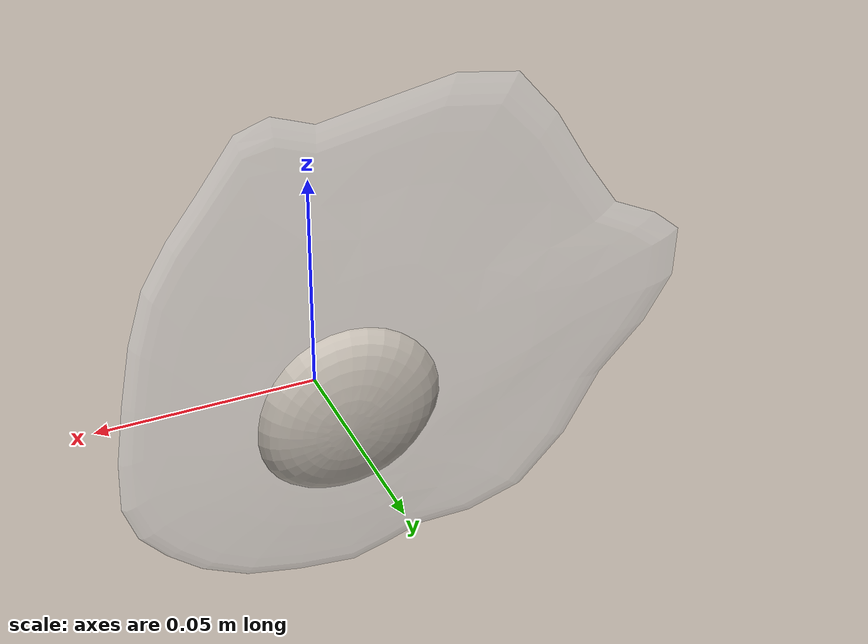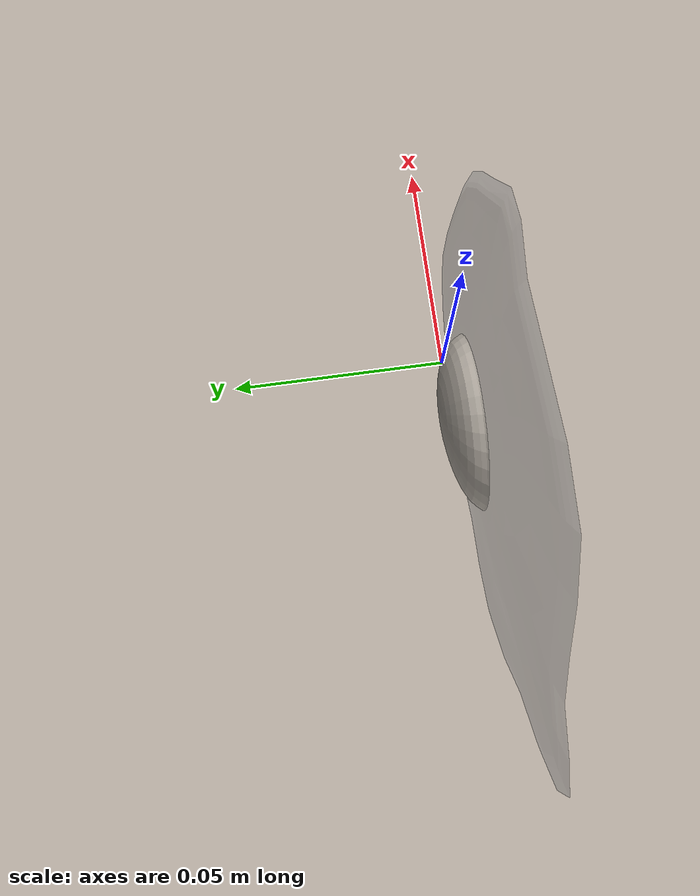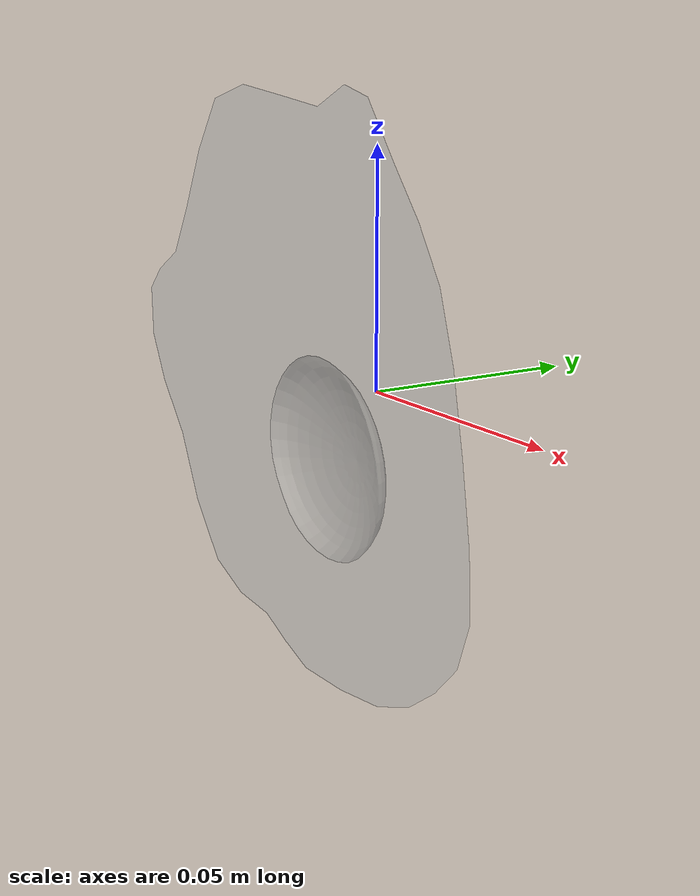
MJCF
<mujoco model="Egg_Cracked_23">
  <compiler autolimits="true" boundmass="0.01" angle="radian"/>
  <default>
    <default class="/">
      <default class="__VISUAL_MJT__">
        <geom contype="0" conaffinity="0" group="0"/>
      </default>
      <default class="__STRUCTURAL_MJT__">
        <geom contype="8" conaffinity="15" group="4" friction="0.90000000000000002 0.90000000000000002 0.001" solref="0.025000000000000001 1" solimp="0.998 0.998 0.001"/>
      </default>
      <default class="__DYNAMIC_MJT__">
        <geom contype="1" conaffinity="15" group="4" friction="0.90000000000000002 0.90000000000000002 0.001" solref="0.025000000000000001 1" solimp="0.998 0.998 0.001"/>
      </default>
    </default>
  </default>
  <asset>
    <texture name="Fried_Egg_White_Uncooked_Mat" type="2d" file="Fried_Egg_AlbedoTransparency.png"/>
    <material name="material_Fried_Egg_White_Uncooked_Mat" class="/" texture="Fried_Egg_White_Uncooked_Mat" specular="0.5" shininess="0.5" rgba="1 1 1 0.5"/>
    <texture name="Fried_Egg_Yolk_Mat" type="2d" file="Fried_Egg_AlbedoTransparency.png"/>
    <material name="material_Fried_Egg_Yolk_Mat" class="/" texture="Fried_Egg_Yolk_Mat" specular="0.5" shininess="0.5" rgba="1 1 1 1"/>
    <mesh name="Egg_Cracked_23_fried_egg_22_0" class="/" file="Egg_Cracked_23_fried_egg_22/Egg_Cracked_23_fried_egg_22_0.obj" scale="1 1 1"/>
    <mesh name="Egg_Cracked_23_fried_egg_22_1" class="/" file="Egg_Cracked_23_fried_egg_22/Egg_Cracked_23_fried_egg_22_1.obj" scale="1 1 1"/>
  </asset>
  <worldbody>
    <body name="Egg_Cracked_23">
      <joint name="Egg_Cracked_23_free" class="/" type="free" pos="0 0 0" axis="0 0 1" stiffness="0" range="0 0" armature="0" damping="0.10000000000000001" frictionloss="0"/>
      <body name="Egg_Cracked_23_fried_egg_22" pos="-0.014069999999999999 -0.01023 -0.015049999999999999" quat="1 0 0 0">
        <geom name="Egg_Cracked_23_fried_egg_22_0" class="__VISUAL_MJT__" type="mesh" material="material_Fried_Egg_White_Uncooked_Mat" shellinertia="false" mesh="Egg_Cracked_23_fried_egg_22_0"/>
        <geom name="Egg_Cracked_23_fried_egg_22_1" class="__VISUAL_MJT__" type="mesh" material="material_Fried_Egg_Yolk_Mat" shellinertia="false" mesh="Egg_Cracked_23_fried_egg_22_1"/>
        <geom name="Egg_Cracked_23_PrimitiveCollider_0" class="__DYNAMIC_MJT__" type="box" size="0.072577409446239471 0.010231256484985352 0.064194455742835999" rgba="0 1 0 1" pos="-0.01407439261674881 0.010231256484985352 0.015046283602714539" quat="1 0 0 0"/>
      </body>
    </body>
  </worldbody>
</mujoco>
